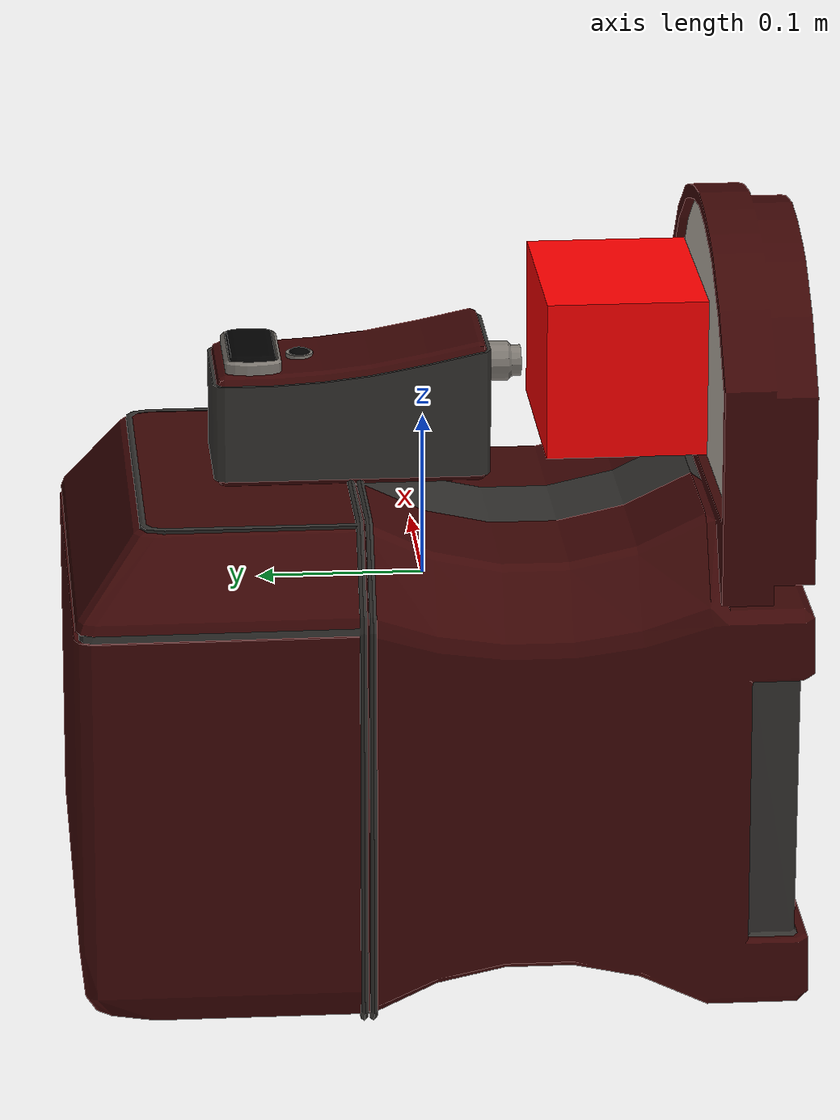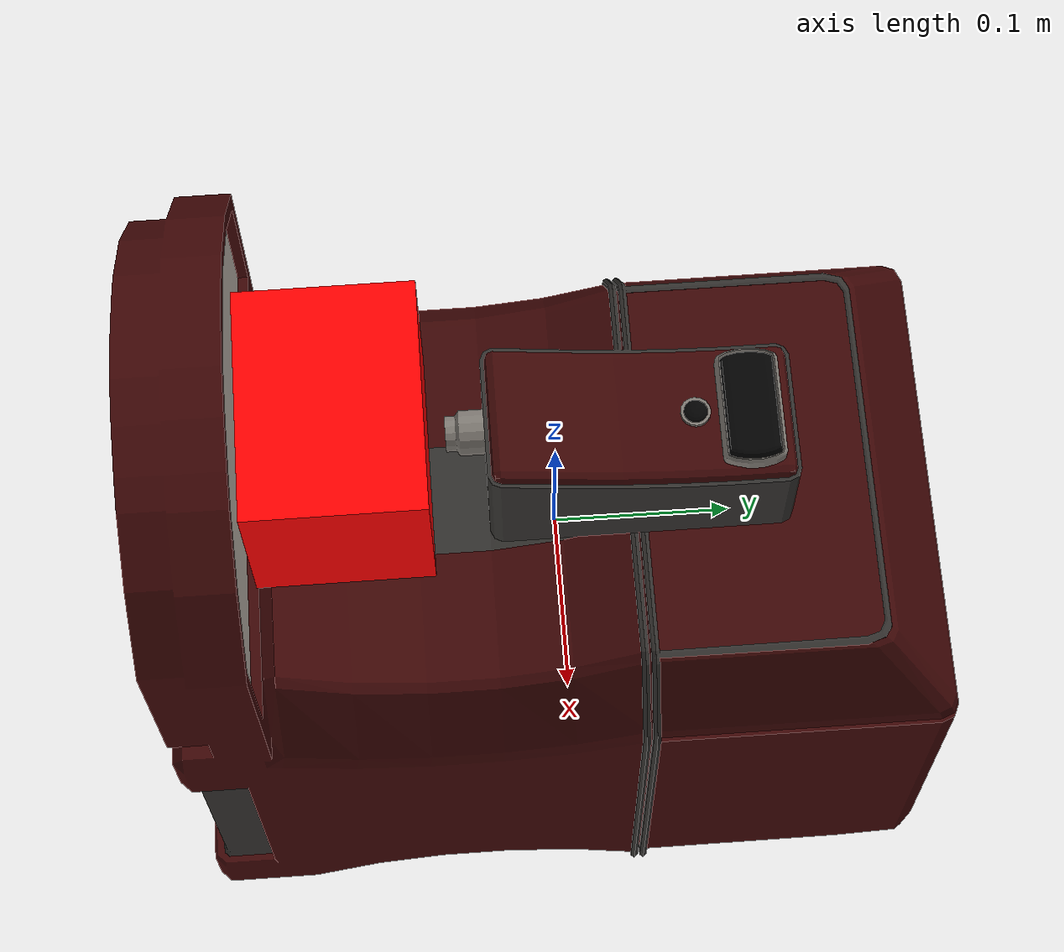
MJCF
<mujoco model="coffee_machine_23">
  <compiler autolimits="true" boundmass="0.01" angle="radian"/>
  <default>
    <default class="/">
      <default class="__VISUAL_MJT__">
        <geom contype="0" conaffinity="0" group="0"/>
      </default>
      <default class="__STRUCTURAL_MJT__">
        <geom contype="8" conaffinity="15" group="4" friction="0.90000000000000002 0.90000000000000002 0.001" solref="0.025000000000000001 1" solimp="0.998 0.998 0.001"/>
      </default>
      <default class="__DYNAMIC_MJT__">
        <geom contype="1" conaffinity="15" group="4" friction="0.90000000000000002 0.90000000000000002 0.001" solref="0.025000000000000001 1" solimp="0.998 0.998 0.001"/>
      </default>
    </default>
  </default>
  <asset>
    <material name="material_coffee_machine_backup_mat" class="/" specular="0.5" shininess="0.5" rgba="0.5 0.5 0.5 1"/>
    <material name="material_Coffee_Machine_Readout_Mat_Off" class="/" specular="0.5" shininess="0.5" rgba="0 0 0 1"/>
    <texture name="Coffee_Machine_Decal_Mat" type="2d" file="Coffee_Machine_Decal_AlbedoTransparency.png"/>
    <material name="material_Coffee_Machine_Decal_Mat" class="/" texture="Coffee_Machine_Decal_Mat" specular="0.5" shininess="0.5" rgba="1 1 1 1"/>
    <texture name="Coffee_Machine_Metal_Mat" type="2d" file="MetalBumpy_AlbedoTransparency.png"/>
    <material name="material_Coffee_Machine_Metal_Mat" class="/" texture="Coffee_Machine_Metal_Mat" specular="0.5" shininess="0.5" rgba="0.66176469999999998 0.66176469999999998 0.66176469999999998 1"/>
    <texture name="Coffee_Machine_Secondary3_Color_Mat" type="2d" file="BrushedIron_AlbedoTransparency.png"/>
    <material name="material_Coffee_Machine_Secondary3_Color_Mat" class="/" texture="Coffee_Machine_Secondary3_Color_Mat" specular="0.5" shininess="0.5" rgba="0.2573529 0.2573529 0.2573529 1"/>
    <texture name="Coffee_Machine_Primary3_Color_Mat" type="2d" file="BumpyPlastic_Albedo.png"/>
    <material name="material_Coffee_Machine_Primary3_Color_Mat" class="/" texture="Coffee_Machine_Primary3_Color_Mat" specular="0.5" shininess="0.5" rgba="0.31617650000000003 0.030222740000000001 0.030222740000000001 1"/>
    <mesh name="coffee_machine_23_coffee_machine_3_0" class="/" file="coffee_machine_23_coffee_machine_3/coffee_machine_23_coffee_machine_3_0.obj" scale="1 1 1"/>
    <mesh name="coffee_machine_23_coffee_machine_3_1" class="/" file="coffee_machine_23_coffee_machine_3/coffee_machine_23_coffee_machine_3_1.obj" scale="1 1 1"/>
    <mesh name="coffee_machine_23_coffee_machine_3_2" class="/" file="coffee_machine_23_coffee_machine_3/coffee_machine_23_coffee_machine_3_2.obj" scale="1 1 1"/>
    <mesh name="coffee_machine_23_coffee_machine_3_3" class="/" file="coffee_machine_23_coffee_machine_3/coffee_machine_23_coffee_machine_3_3.obj" scale="1 1 1"/>
    <mesh name="coffee_machine_23_coffee_machine_3_4" class="/" file="coffee_machine_23_coffee_machine_3/coffee_machine_23_coffee_machine_3_4.obj" scale="1 1 1"/>
    <mesh name="coffee_machine_23_coffee_machine_3_5" class="/" file="coffee_machine_23_coffee_machine_3/coffee_machine_23_coffee_machine_3_5.obj" scale="1 1 1"/>
  </asset>
  <worldbody>
    <body name="coffee_machine_23">
      <joint name="coffee_machine_23_free" class="/" type="free" pos="0 0 0" axis="0 0 1" stiffness="0" range="0 0" armature="0" damping="0.10000000000000001" frictionloss="0"/>
      <body name="coffee_machine_23_coffee_machine_3" pos="-0 -0.22112000000000001 -0.098919999999999994" quat="1 0 0 0">
        <geom name="coffee_machine_23_coffee_machine_3_0" class="__VISUAL_MJT__" type="mesh" material="material_coffee_machine_backup_mat" shellinertia="true" mesh="coffee_machine_23_coffee_machine_3_0"/>
        <geom name="coffee_machine_23_coffee_machine_3_1" class="__VISUAL_MJT__" type="mesh" material="material_Coffee_Machine_Readout_Mat_Off" shellinertia="false" mesh="coffee_machine_23_coffee_machine_3_1"/>
        <geom name="coffee_machine_23_coffee_machine_3_2" class="__VISUAL_MJT__" type="mesh" material="material_Coffee_Machine_Decal_Mat" shellinertia="false" mesh="coffee_machine_23_coffee_machine_3_2"/>
        <geom name="coffee_machine_23_coffee_machine_3_3" class="__VISUAL_MJT__" type="mesh" material="material_Coffee_Machine_Metal_Mat" shellinertia="false" mesh="coffee_machine_23_coffee_machine_3_3"/>
        <geom name="coffee_machine_23_coffee_machine_3_4" class="__VISUAL_MJT__" type="mesh" material="material_Coffee_Machine_Secondary3_Color_Mat" shellinertia="false" mesh="coffee_machine_23_coffee_machine_3_4"/>
        <geom name="coffee_machine_23_coffee_machine_3_5" class="__VISUAL_MJT__" type="mesh" material="material_Coffee_Machine_Primary3_Color_Mat" shellinertia="false" mesh="coffee_machine_23_coffee_machine_3_5"/>
        <site name="coffee_machine_23_Receptacle_0" class="/" type="box" rgba="1 0 0 1" size="0.064159214496612549 0.047965049743652344 0.047657579183578491" pos="-0 0.10486504435539246 0.23910243809223175" quat="1 0 0 0"/>
        <geom name="coffee_machine_23_PrimitiveCollider_0" class="__DYNAMIC_MJT__" type="box" size="0.14734183251857758 0.22112220525741577 0.1534503698348999" rgba="0 1 0 1" pos="-0 0.22112220525741577 0.016913274303078651" quat="1 0 0 0"/>
        <geom name="coffee_machine_23_PrimitiveCollider_1" class="__DYNAMIC_MJT__" type="box" size="0.14734183251857758 0.028673112392425537 0.092132598161697388" rgba="0 1 0 1" pos="-0 0.028673112392425537 0.24223759770393372" quat="1 0 0 0"/>
        <geom name="coffee_machine_23_PrimitiveCollider_2" class="__DYNAMIC_MJT__" type="box" size="0.041353575885295868 0.083342015743255615 0.053347289562225342" rgba="0 1 0 1" pos="-0 0.26729530096054077 0.20345228910446167" quat="1 0 0 0"/>
      </body>
    </body>
  </worldbody>
</mujoco>
